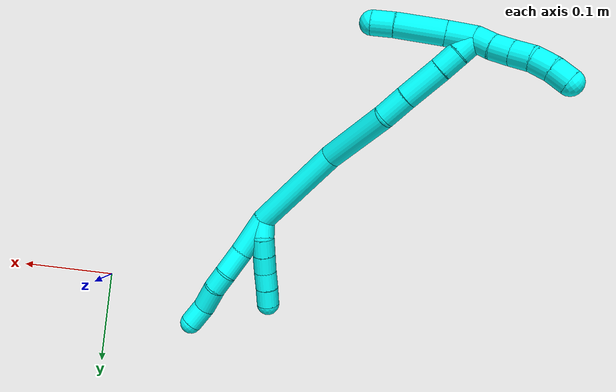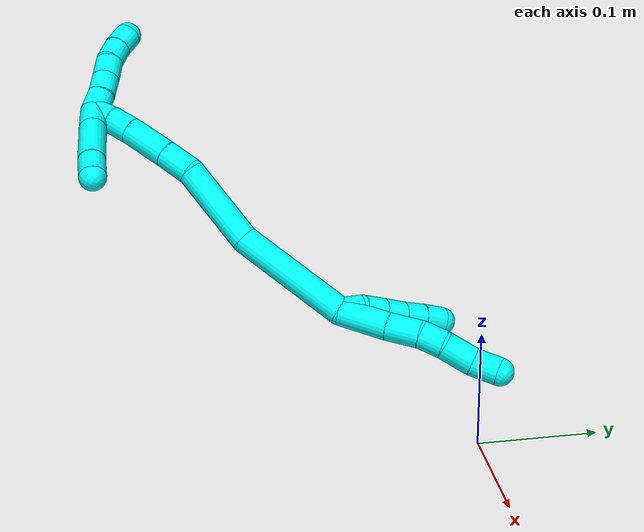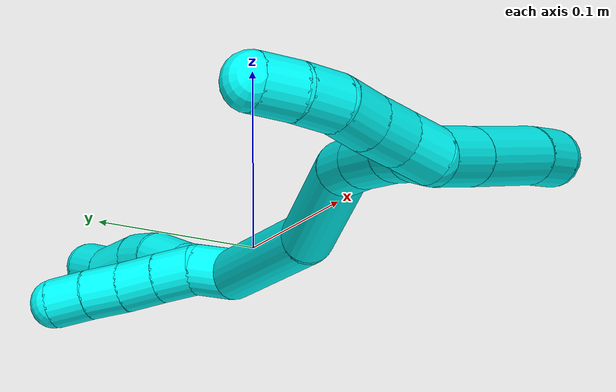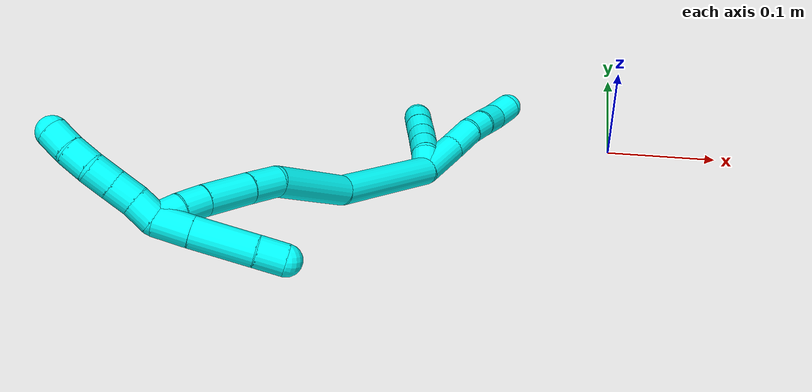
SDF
<sdf version="1.7">
 <world name="default">
  <model name="3">
   <static>0</static>
   <link name="3">
    <collision name="collision-cylinder-e_1_2_8">
     <pose>0.007252 0.006471 -0.019644 -2.82336 0.337241 -1.62983</pose>
     <geometry><cylinder><radius>0.0125</radius><length>0.043835</length></cylinder></geometry>
     <surface>
      <friction><ode><mu>1.16</mu><mu2>1.16</mu2><slip1>0</slip1><slip2>0</slip2></ode></friction>
      <contact><ode><kp>1e+06</kp><kd>1</kd><max_vel>0</max_vel><min_depth>0.001</min_depth></ode></contact>
     </surface>
    </collision>
    <visual name="visual-cylinder-e_1_2_8">
     <pose>0.007252 0.006471 -0.019644 -2.82336 0.337241 -1.62983</pose>
     <geometry><cylinder><radius>0.0125</radius><length>0.043835</length></cylinder></geometry>
     <material><ambient>0.003922 1 0.996078 1</ambient></material>
    </visual>
    <collision name="collision-cylinder-e_2_8_9">
     <pose>0.020924 0.016623 -0.052531 -2.87053 0.43697 -2.04002</pose>
     <geometry><cylinder><radius>0.0125</radius><length>0.03034</length></cylinder></geometry>
     <surface>
      <friction><ode><mu>1.16</mu><mu2>1.16</mu2><slip1>0</slip1><slip2>0</slip2></ode></friction>
      <contact><ode><kp>1e+06</kp><kd>1</kd><max_vel>0</max_vel><min_depth>0.001</min_depth></ode></contact>
     </surface>
    </collision>
    <visual name="visual-cylinder-e_2_8_9">
     <pose>0.020924 0.016623 -0.052531 -2.87053 0.43697 -2.04002</pose>
     <geometry><cylinder><radius>0.0125</radius><length>0.03034</length></cylinder></geometry>
     <material><ambient>0.003922 1 0.996078 1</ambient></material>
    </visual>
    <collision name="collision-cylinder-e_3_9_10">
     <pose>0.029755 0.023178 -0.076031 -2.86835 0.222584 -1.36508</pose>
     <geometry><cylinder><radius>0.0125</radius><length>0.021844</length></cylinder></geometry>
     <surface>
      <friction><ode><mu>1.16</mu><mu2>1.16</mu2><slip1>0</slip1><slip2>0</slip2></ode></friction>
      <contact><ode><kp>1e+06</kp><kd>1</kd><max_vel>0</max_vel><min_depth>0.001</min_depth></ode></contact>
     </surface>
    </collision>
    <visual name="visual-cylinder-e_3_9_10">
     <pose>0.029755 0.023178 -0.076031 -2.86835 0.222584 -1.36508</pose>
     <geometry><cylinder><radius>0.0125</radius><length>0.021844</length></cylinder></geometry>
     <material><ambient>0.003922 1 0.996078 1</ambient></material>
    </visual>
    <collision name="collision-cylinder-e_4_10_11">
     <pose>0.032705 0.031614 -0.0998 -2.75114 0.036859 -0.185881</pose>
     <geometry><cylinder><radius>0.0125</radius><length>0.029242</length></cylinder></geometry>
     <surface>
      <friction><ode><mu>1.16</mu><mu2>1.16</mu2><slip1>0</slip1><slip2>0</slip2></ode></friction>
      <contact><ode><kp>1e+06</kp><kd>1</kd><max_vel>0</max_vel><min_depth>0.001</min_depth></ode></contact>
     </surface>
    </collision>
    <visual name="visual-cylinder-e_4_10_11">
     <pose>0.032705 0.031614 -0.0998 -2.75114 0.036859 -0.185881</pose>
     <geometry><cylinder><radius>0.0125</radius><length>0.029242</length></cylinder></geometry>
     <material><ambient>0.003922 1 0.996078 1</ambient></material>
    </visual>
    <collision name="collision-cylinder-e_5_11_6">
     <pose>0.037289 0.039746 -0.124714 -2.91977 0.333178 -1.97162</pose>
     <geometry><cylinder><radius>0.0125</radius><length>0.02474</length></cylinder></geometry>
     <surface>
      <friction><ode><mu>1.16</mu><mu2>1.16</mu2><slip1>0</slip1><slip2>0</slip2></ode></friction>
      <contact><ode><kp>1e+06</kp><kd>1</kd><max_vel>0</max_vel><min_depth>0.001</min_depth></ode></contact>
     </surface>
    </collision>
    <visual name="visual-cylinder-e_5_11_6">
     <pose>0.037289 0.039746 -0.124714 -2.91977 0.333178 -1.97162</pose>
     <geometry><cylinder><radius>0.0125</radius><length>0.02474</length></cylinder></geometry>
     <material><ambient>0.003922 1 0.996078 1</ambient></material>
    </visual>
    <collision name="collision-cylinder-e_1_2_12">
     <pose>0.00421 0.007374 -0.005282 -2.19233 0.434537 -0.811594</pose>
     <geometry><cylinder><radius>0.0125</radius><length>0.02</length></cylinder></geometry>
     <surface>
      <friction><ode><mu>1.16</mu><mu2>1.16</mu2><slip1>0</slip1><slip2>0</slip2></ode></friction>
      <contact><ode><kp>1e+06</kp><kd>1</kd><max_vel>0</max_vel><min_depth>0.001</min_depth></ode></contact>
     </surface>
    </collision>
    <visual name="visual-cylinder-e_1_2_12">
     <pose>0.00421 0.007374 -0.005282 -2.19233 0.434537 -0.811594</pose>
     <geometry><cylinder><radius>0.0125</radius><length>0.02</length></cylinder></geometry>
     <material><ambient>0.003922 1 0.996078 1</ambient></material>
    </visual>
    <collision name="collision-cylinder-e_2_12_13">
     <pose>0.009416 0.022791 -0.016422 -2.20032 0.099786 -0.19567</pose>
     <geometry><cylinder><radius>0.0125</radius><length>0.02</length></cylinder></geometry>
     <surface>
      <friction><ode><mu>1.16</mu><mu2>1.16</mu2><slip1>0</slip1><slip2>0</slip2></ode></friction>
      <contact><ode><kp>1e+06</kp><kd>1</kd><max_vel>0</max_vel><min_depth>0.001</min_depth></ode></contact>
     </surface>
    </collision>
    <visual name="visual-cylinder-e_2_12_13">
     <pose>0.009416 0.022791 -0.016422 -2.20032 0.099786 -0.19567</pose>
     <geometry><cylinder><radius>0.0125</radius><length>0.02</length></cylinder></geometry>
     <material><ambient>0.003922 1 0.996078 1</ambient></material>
    </visual>
    <collision name="collision-cylinder-e_3_13_14">
     <pose>0.01121 0.038869 -0.02818 -2.20425 0.079876 -0.157523</pose>
     <geometry><cylinder><radius>0.0125</radius><length>0.02</length></cylinder></geometry>
     <surface>
      <friction><ode><mu>1.16</mu><mu2>1.16</mu2><slip1>0</slip1><slip2>0</slip2></ode></friction>
      <contact><ode><kp>1e+06</kp><kd>1</kd><max_vel>0</max_vel><min_depth>0.001</min_depth></ode></contact>
     </surface>
    </collision>
    <visual name="visual-cylinder-e_3_13_14">
     <pose>0.01121 0.038869 -0.02818 -2.20425 0.079876 -0.157523</pose>
     <geometry><cylinder><radius>0.0125</radius><length>0.02</length></cylinder></geometry>
     <material><ambient>0.003922 1 0.996078 1</ambient></material>
    </visual>
    <collision name="collision-cylinder-e_4_14_15">
     <pose>0.013231 0.055177 -0.039561 -2.15581 0.122556 -0.227476</pose>
     <geometry><cylinder><radius>0.0125</radius><length>0.02</length></cylinder></geometry>
     <surface>
      <friction><ode><mu>1.16</mu><mu2>1.16</mu2><slip1>0</slip1><slip2>0</slip2></ode></friction>
      <contact><ode><kp>1e+06</kp><kd>1</kd><max_vel>0</max_vel><min_depth>0.001</min_depth></ode></contact>
     </surface>
    </collision>
    <visual name="visual-cylinder-e_4_14_15">
     <pose>0.013231 0.055177 -0.039561 -2.15581 0.122556 -0.227476</pose>
     <geometry><cylinder><radius>0.0125</radius><length>0.02</length></cylinder></geometry>
     <material><ambient>0.003922 1 0.996078 1</ambient></material>
    </visual>
    <collision name="collision-cylinder-e_5_15_5">
     <pose>0.015307 0.071509 -0.050904 -2.19974 0.085526 -0.167692</pose>
     <geometry><cylinder><radius>0.0125</radius><length>0.02</length></cylinder></geometry>
     <surface>
      <friction><ode><mu>1.16</mu><mu2>1.16</mu2><slip1>0</slip1><slip2>0</slip2></ode></friction>
      <contact><ode><kp>1e+06</kp><kd>1</kd><max_vel>0</max_vel><min_depth>0.001</min_depth></ode></contact>
     </surface>
    </collision>
    <visual name="visual-cylinder-e_5_15_5">
     <pose>0.015307 0.071509 -0.050904 -2.19974 0.085526 -0.167692</pose>
     <geometry><cylinder><radius>0.0125</radius><length>0.02</length></cylinder></geometry>
     <material><ambient>0.003922 1 0.996078 1</ambient></material>
    </visual>
    <collision name="collision-cylinder-e_1_2_16">
     <pose>-0.00326 -0.006647 0.053635 0.12331 -0.060245 -0.00372</pose>
     <geometry><cylinder><radius>0.0125</radius><length>0.108286</length></cylinder></geometry>
     <surface>
      <friction><ode><mu>1.16</mu><mu2>1.16</mu2><slip1>0</slip1><slip2>0</slip2></ode></friction>
      <contact><ode><kp>1e+06</kp><kd>1</kd><max_vel>0</max_vel><min_depth>0.001</min_depth></ode></contact>
     </surface>
    </collision>
    <visual name="visual-cylinder-e_1_2_16">
     <pose>-0.00326 -0.006647 0.053635 0.12331 -0.060245 -0.00372</pose>
     <geometry><cylinder><radius>0.0125</radius><length>0.108286</length></cylinder></geometry>
     <material><ambient>0.003922 1 0.996078 1</ambient></material>
    </visual>
    <collision name="collision-cylinder-e_2_16_17">
     <pose>0.000957 -0.01565 0.145597 0.061378 0.192302 0.005922</pose>
     <geometry><cylinder><radius>0.0125</radius><length>0.078243</length></cylinder></geometry>
     <surface>
      <friction><ode><mu>1.16</mu><mu2>1.16</mu2><slip1>0</slip1><slip2>0</slip2></ode></friction>
      <contact><ode><kp>1e+06</kp><kd>1</kd><max_vel>0</max_vel><min_depth>0.001</min_depth></ode></contact>
     </surface>
    </collision>
    <visual name="visual-cylinder-e_2_16_17">
     <pose>0.000957 -0.01565 0.145597 0.061378 0.192302 0.005922</pose>
     <geometry><cylinder><radius>0.0125</radius><length>0.078243</length></cylinder></geometry>
     <material><ambient>0.003922 1 0.996078 1</ambient></material>
    </visual>
    <collision name="collision-cylinder-e_3_17_18">
     <pose>0.006754 -0.019115 0.198307 0.076951 -0.115973 -0.004469</pose>
     <geometry><cylinder><radius>0.0125</radius><length>0.029044</length></cylinder></geometry>
     <surface>
      <friction><ode><mu>1.16</mu><mu2>1.16</mu2><slip1>0</slip1><slip2>0</slip2></ode></friction>
      <contact><ode><kp>1e+06</kp><kd>1</kd><max_vel>0</max_vel><min_depth>0.001</min_depth></ode></contact>
     </surface>
    </collision>
    <visual name="visual-cylinder-e_3_17_18">
     <pose>0.006754 -0.019115 0.198307 0.076951 -0.115973 -0.004469</pose>
     <geometry><cylinder><radius>0.0125</radius><length>0.029044</length></cylinder></geometry>
     <material><ambient>0.003922 1 0.996078 1</ambient></material>
    </visual>
    <collision name="collision-cylinder-e_4_18_19">
     <pose>0.001709 -0.021163 0.233214 0.045739 -0.162274 -0.00372</pose>
     <geometry><cylinder><radius>0.0125</radius><length>0.041641</length></cylinder></geometry>
     <surface>
      <friction><ode><mu>1.16</mu><mu2>1.16</mu2><slip1>0</slip1><slip2>0</slip2></ode></friction>
      <contact><ode><kp>1e+06</kp><kd>1</kd><max_vel>0</max_vel><min_depth>0.001</min_depth></ode></contact>
     </surface>
    </collision>
    <visual name="visual-cylinder-e_4_18_19">
     <pose>0.001709 -0.021163 0.233214 0.045739 -0.162274 -0.00372</pose>
     <geometry><cylinder><radius>0.0125</radius><length>0.041641</length></cylinder></geometry>
     <material><ambient>0.003922 1 0.996078 1</ambient></material>
    </visual>
    <collision name="collision-cylinder-e_5_19_20">
     <pose>-0.004061 -0.022819 0.264339 0.067543 -0.222769 -0.007557</pose>
     <geometry><cylinder><radius>0.0125</radius><length>0.021784</length></cylinder></geometry>
     <surface>
      <friction><ode><mu>1.16</mu><mu2>1.16</mu2><slip1>0</slip1><slip2>0</slip2></ode></friction>
      <contact><ode><kp>1e+06</kp><kd>1</kd><max_vel>0</max_vel><min_depth>0.001</min_depth></ode></contact>
     </surface>
    </collision>
    <visual name="visual-cylinder-e_5_19_20">
     <pose>-0.004061 -0.022819 0.264339 0.067543 -0.222769 -0.007557</pose>
     <geometry><cylinder><radius>0.0125</radius><length>0.021784</length></cylinder></geometry>
     <material><ambient>0.003922 1 0.996078 1</ambient></material>
    </visual>
    <collision name="collision-cylinder-e_6_20_1">
     <pose>-0.009833 -0.024083 0.284869 0.055016 -0.326255 -0.009057</pose>
     <geometry><cylinder><radius>0.0125</radius><length>0.021001</length></cylinder></geometry>
     <surface>
      <friction><ode><mu>1.16</mu><mu2>1.16</mu2><slip1>0</slip1><slip2>0</slip2></ode></friction>
      <contact><ode><kp>1e+06</kp><kd>1</kd><max_vel>0</max_vel><min_depth>0.001</min_depth></ode></contact>
     </surface>
    </collision>
    <visual name="visual-cylinder-e_6_20_1">
     <pose>-0.009833 -0.024083 0.284869 0.055016 -0.326255 -0.009057</pose>
     <geometry><cylinder><radius>0.0125</radius><length>0.021001</length></cylinder></geometry>
     <material><ambient>0.003922 1 0.996078 1</ambient></material>
    </visual>
    <collision name="collision-cylinder-e_1_1_21">
     <pose>-0.013669 -0.034966 0.285429 2.30735 -0.033733 -0.076095</pose>
     <geometry><cylinder><radius>0.0125</radius><length>0.02792</length></cylinder></geometry>
     <surface>
      <friction><ode><mu>1.16</mu><mu2>1.16</mu2><slip1>0</slip1><slip2>0</slip2></ode></friction>
      <contact><ode><kp>1e+06</kp><kd>1</kd><max_vel>0</max_vel><min_depth>0.001</min_depth></ode></contact>
     </surface>
    </collision>
    <visual name="visual-cylinder-e_1_1_21">
     <pose>-0.013669 -0.034966 0.285429 2.30735 -0.033733 -0.076095</pose>
     <geometry><cylinder><radius>0.0125</radius><length>0.02792</length></cylinder></geometry>
     <material><ambient>0.003922 1 0.996078 1</ambient></material>
    </visual>
    <collision name="collision-cylinder-e_2_21_22">
     <pose>-0.014527 -0.063257 0.259117 2.32708 -0.015677 -0.036338</pose>
     <geometry><cylinder><radius>0.0125</radius><length>0.049376</length></cylinder></geometry>
     <surface>
      <friction><ode><mu>1.16</mu><mu2>1.16</mu2><slip1>0</slip1><slip2>0</slip2></ode></friction>
      <contact><ode><kp>1e+06</kp><kd>1</kd><max_vel>0</max_vel><min_depth>0.001</min_depth></ode></contact>
     </surface>
    </collision>
    <visual name="visual-cylinder-e_2_21_22">
     <pose>-0.014527 -0.063257 0.259117 2.32708 -0.015677 -0.036338</pose>
     <geometry><cylinder><radius>0.0125</radius><length>0.049376</length></cylinder></geometry>
     <material><ambient>0.003922 1 0.996078 1</ambient></material>
    </visual>
    <collision name="collision-cylinder-e_3_22_4">
     <pose>-0.015521 -0.088861 0.233811 2.40098 -0.053478 -0.13757</pose>
     <geometry><cylinder><radius>0.0125</radius><length>0.022704</length></cylinder></geometry>
     <surface>
      <friction><ode><mu>1.16</mu><mu2>1.16</mu2><slip1>0</slip1><slip2>0</slip2></ode></friction>
      <contact><ode><kp>1e+06</kp><kd>1</kd><max_vel>0</max_vel><min_depth>0.001</min_depth></ode></contact>
     </surface>
    </collision>
    <visual name="visual-cylinder-e_3_22_4">
     <pose>-0.015521 -0.088861 0.233811 2.40098 -0.053478 -0.13757</pose>
     <geometry><cylinder><radius>0.0125</radius><length>0.022704</length></cylinder></geometry>
     <material><ambient>0.003922 1 0.996078 1</ambient></material>
    </visual>
    <collision name="collision-cylinder-e_1_1_23">
     <pose>-0.008705 -0.017253 0.29984 -0.971445 0.465959 -0.249234</pose>
     <geometry><cylinder><radius>0.0125</radius><length>0.02</length></cylinder></geometry>
     <surface>
      <friction><ode><mu>1.16</mu><mu2>1.16</mu2><slip1>0</slip1><slip2>0</slip2></ode></friction>
      <contact><ode><kp>1e+06</kp><kd>1</kd><max_vel>0</max_vel><min_depth>0.001</min_depth></ode></contact>
     </surface>
    </collision>
    <visual name="visual-cylinder-e_1_1_23">
     <pose>-0.008705 -0.017253 0.29984 -0.971445 0.465959 -0.249234</pose>
     <geometry><cylinder><radius>0.0125</radius><length>0.02</length></cylinder></geometry>
     <material><ambient>0.003922 1 0.996078 1</ambient></material>
    </visual>
    <collision name="collision-cylinder-e_2_23_24">
     <pose>-0.000499 -0.00285 0.310949 -0.858394 0.38045 -0.17579</pose>
     <geometry><cylinder><radius>0.0125</radius><length>0.02</length></cylinder></geometry>
     <surface>
      <friction><ode><mu>1.16</mu><mu2>1.16</mu2><slip1>0</slip1><slip2>0</slip2></ode></friction>
      <contact><ode><kp>1e+06</kp><kd>1</kd><max_vel>0</max_vel><min_depth>0.001</min_depth></ode></contact>
     </surface>
    </collision>
    <visual name="visual-cylinder-e_2_23_24">
     <pose>-0.000499 -0.00285 0.310949 -0.858394 0.38045 -0.17579</pose>
     <geometry><cylinder><radius>0.0125</radius><length>0.02</length></cylinder></geometry>
     <material><ambient>0.003922 1 0.996078 1</ambient></material>
    </visual>
    <collision name="collision-cylinder-e_3_24_25">
     <pose>0.007149 0.010887 0.323302 -0.818202 0.404464 -0.177325</pose>
     <geometry><cylinder><radius>0.0125</radius><length>0.02</length></cylinder></geometry>
     <surface>
      <friction><ode><mu>1.16</mu><mu2>1.16</mu2><slip1>0</slip1><slip2>0</slip2></ode></friction>
      <contact><ode><kp>1e+06</kp><kd>1</kd><max_vel>0</max_vel><min_depth>0.001</min_depth></ode></contact>
     </surface>
    </collision>
    <visual name="visual-cylinder-e_3_24_25">
     <pose>0.007149 0.010887 0.323302 -0.818202 0.404464 -0.177325</pose>
     <geometry><cylinder><radius>0.0125</radius><length>0.02</length></cylinder></geometry>
     <material><ambient>0.003922 1 0.996078 1</ambient></material>
    </visual>
    <collision name="collision-cylinder-e_4_25_26">
     <pose>0.01445 0.025822 0.334173 -1.06208 0.343224 -0.202883</pose>
     <geometry><cylinder><radius>0.0125</radius><length>0.02</length></cylinder></geometry>
     <surface>
      <friction><ode><mu>1.16</mu><mu2>1.16</mu2><slip1>0</slip1><slip2>0</slip2></ode></friction>
      <contact><ode><kp>1e+06</kp><kd>1</kd><max_vel>0</max_vel><min_depth>0.001</min_depth></ode></contact>
     </surface>
    </collision>
    <visual name="visual-cylinder-e_4_25_26">
     <pose>0.01445 0.025822 0.334173 -1.06208 0.343224 -0.202883</pose>
     <geometry><cylinder><radius>0.0125</radius><length>0.02</length></cylinder></geometry>
     <material><ambient>0.003922 1 0.996078 1</ambient></material>
    </visual>
    <collision name="collision-cylinder-e_5_26_3">
     <pose>0.021282 0.042879 0.341915 -1.22763 0.35403 -0.25077</pose>
     <geometry><cylinder><radius>0.0125</radius><length>0.02</length></cylinder></geometry>
     <surface>
      <friction><ode><mu>1.16</mu><mu2>1.16</mu2><slip1>0</slip1><slip2>0</slip2></ode></friction>
      <contact><ode><kp>1e+06</kp><kd>1</kd><max_vel>0</max_vel><min_depth>0.001</min_depth></ode></contact>
     </surface>
    </collision>
    <visual name="visual-cylinder-e_5_26_3">
     <pose>0.021282 0.042879 0.341915 -1.22763 0.35403 -0.25077</pose>
     <geometry><cylinder><radius>0.0125</radius><length>0.02</length></cylinder></geometry>
     <material><ambient>0.003922 1 0.996078 1</ambient></material>
    </visual>
    <collision name="collision-sphere-3">
     <pose>0.024749 0.051712 0.345071 0 -0 0</pose>
     <geometry><sphere><radius>0.0125</radius></sphere></geometry>
     <surface>
      <friction><ode><mu>1.16</mu><mu2>1.16</mu2><slip1>0</slip1><slip2>0</slip2></ode></friction>
      <contact><ode><kp>1e+06</kp><kd>1</kd><max_vel>0</max_vel><min_depth>0.001</min_depth></ode></contact>
     </surface>
    </collision>
    <visual name="visual-sphere-3">
     <pose>0.024749 0.051712 0.345071 0 -0 0</pose>
     <geometry><sphere><radius>0.0125</radius></sphere></geometry>
     <material><ambient>0.003922 1 0.996078 1</ambient></material>
    </visual>
    <collision name="collision-sphere-26">
     <pose>0.017815 0.034046 0.338759 0 -0 0</pose>
     <geometry><sphere><radius>0.0125</radius></sphere></geometry>
     <surface>
      <friction><ode><mu>1.16</mu><mu2>1.16</mu2><slip1>0</slip1><slip2>0</slip2></ode></friction>
      <contact><ode><kp>1e+06</kp><kd>1</kd><max_vel>0</max_vel><min_depth>0.001</min_depth></ode></contact>
     </surface>
    </collision>
    <visual name="visual-sphere-26">
     <pose>0.017815 0.034046 0.338759 0 -0 0</pose>
     <geometry><sphere><radius>0.0125</radius></sphere></geometry>
     <material><ambient>0.003922 1 0.996078 1</ambient></material>
    </visual>
    <collision name="collision-sphere-25">
     <pose>0.011085 0.017597 0.329586 0 -0 0</pose>
     <geometry><sphere><radius>0.0125</radius></sphere></geometry>
     <surface>
      <friction><ode><mu>1.16</mu><mu2>1.16</mu2><slip1>0</slip1><slip2>0</slip2></ode></friction>
      <contact><ode><kp>1e+06</kp><kd>1</kd><max_vel>0</max_vel><min_depth>0.001</min_depth></ode></contact>
     </surface>
    </collision>
    <visual name="visual-sphere-25">
     <pose>0.011085 0.017597 0.329586 0 -0 0</pose>
     <geometry><sphere><radius>0.0125</radius></sphere></geometry>
     <material><ambient>0.003922 1 0.996078 1</ambient></material>
    </visual>
    <collision name="collision-sphere-24">
     <pose>0.003214 0.004177 0.317018 0 -0 0</pose>
     <geometry><sphere><radius>0.0125</radius></sphere></geometry>
     <surface>
      <friction><ode><mu>1.16</mu><mu2>1.16</mu2><slip1>0</slip1><slip2>0</slip2></ode></friction>
      <contact><ode><kp>1e+06</kp><kd>1</kd><max_vel>0</max_vel><min_depth>0.001</min_depth></ode></contact>
     </surface>
    </collision>
    <visual name="visual-sphere-24">
     <pose>0.003214 0.004177 0.317018 0 -0 0</pose>
     <geometry><sphere><radius>0.0125</radius></sphere></geometry>
     <material><ambient>0.003922 1 0.996078 1</ambient></material>
    </visual>
    <collision name="collision-sphere-23">
     <pose>-0.004213 -0.009877 0.30488 0 -0 0</pose>
     <geometry><sphere><radius>0.0125</radius></sphere></geometry>
     <surface>
      <friction><ode><mu>1.16</mu><mu2>1.16</mu2><slip1>0</slip1><slip2>0</slip2></ode></friction>
      <contact><ode><kp>1e+06</kp><kd>1</kd><max_vel>0</max_vel><min_depth>0.001</min_depth></ode></contact>
     </surface>
    </collision>
    <visual name="visual-sphere-23">
     <pose>-0.004213 -0.009877 0.30488 0 -0 0</pose>
     <geometry><sphere><radius>0.0125</radius></sphere></geometry>
     <material><ambient>0.003922 1 0.996078 1</ambient></material>
    </visual>
    <collision name="collision-sphere-4">
     <pose>-0.016127 -0.09651 0.225445 0 -0 0</pose>
     <geometry><sphere><radius>0.0125</radius></sphere></geometry>
     <surface>
      <friction><ode><mu>1.16</mu><mu2>1.16</mu2><slip1>0</slip1><slip2>0</slip2></ode></friction>
      <contact><ode><kp>1e+06</kp><kd>1</kd><max_vel>0</max_vel><min_depth>0.001</min_depth></ode></contact>
     </surface>
    </collision>
    <visual name="visual-sphere-4">
     <pose>-0.016127 -0.09651 0.225445 0 -0 0</pose>
     <geometry><sphere><radius>0.0125</radius></sphere></geometry>
     <material><ambient>0.003922 1 0.996078 1</ambient></material>
    </visual>
    <collision name="collision-sphere-22">
     <pose>-0.014914 -0.081213 0.242178 0 -0 0</pose>
     <geometry><sphere><radius>0.0125</radius></sphere></geometry>
     <surface>
      <friction><ode><mu>1.16</mu><mu2>1.16</mu2><slip1>0</slip1><slip2>0</slip2></ode></friction>
      <contact><ode><kp>1e+06</kp><kd>1</kd><max_vel>0</max_vel><min_depth>0.001</min_depth></ode></contact>
     </surface>
    </collision>
    <visual name="visual-sphere-22">
     <pose>-0.014914 -0.081213 0.242178 0 -0 0</pose>
     <geometry><sphere><radius>0.0125</radius></sphere></geometry>
     <material><ambient>0.003922 1 0.996078 1</ambient></material>
    </visual>
    <collision name="collision-sphere-21">
     <pose>-0.01414 -0.045301 0.276057 0 -0 0</pose>
     <geometry><sphere><radius>0.0125</radius></sphere></geometry>
     <surface>
      <friction><ode><mu>1.16</mu><mu2>1.16</mu2><slip1>0</slip1><slip2>0</slip2></ode></friction>
      <contact><ode><kp>1e+06</kp><kd>1</kd><max_vel>0</max_vel><min_depth>0.001</min_depth></ode></contact>
     </surface>
    </collision>
    <visual name="visual-sphere-21">
     <pose>-0.01414 -0.045301 0.276057 0 -0 0</pose>
     <geometry><sphere><radius>0.0125</radius></sphere></geometry>
     <material><ambient>0.003922 1 0.996078 1</ambient></material>
    </visual>
    <collision name="collision-sphere-1">
     <pose>-0.013198 -0.02463 0.294801 0 -0 0</pose>
     <geometry><sphere><radius>0.0125</radius></sphere></geometry>
     <surface>
      <friction><ode><mu>1.16</mu><mu2>1.16</mu2><slip1>0</slip1><slip2>0</slip2></ode></friction>
      <contact><ode><kp>1e+06</kp><kd>1</kd><max_vel>0</max_vel><min_depth>0.001</min_depth></ode></contact>
     </surface>
    </collision>
    <visual name="visual-sphere-1">
     <pose>-0.013198 -0.02463 0.294801 0 -0 0</pose>
     <geometry><sphere><radius>0.0125</radius></sphere></geometry>
     <material><ambient>0.003922 1 0.996078 1</ambient></material>
    </visual>
    <collision name="collision-sphere-6">
     <pose>0.041335 0.042318 -0.136118 0 -0 0</pose>
     <geometry><sphere><radius>0.0125</radius></sphere></geometry>
     <surface>
      <friction><ode><mu>1.16</mu><mu2>1.16</mu2><slip1>0</slip1><slip2>0</slip2></ode></friction>
      <contact><ode><kp>1e+06</kp><kd>1</kd><max_vel>0</max_vel><min_depth>0.001</min_depth></ode></contact>
     </surface>
    </collision>
    <visual name="visual-sphere-6">
     <pose>0.041335 0.042318 -0.136118 0 -0 0</pose>
     <geometry><sphere><radius>0.0125</radius></sphere></geometry>
     <material><ambient>0.003922 1 0.996078 1</ambient></material>
    </visual>
    <collision name="collision-sphere-11">
     <pose>0.033244 0.037175 -0.113311 0 -0 0</pose>
     <geometry><sphere><radius>0.0125</radius></sphere></geometry>
     <surface>
      <friction><ode><mu>1.16</mu><mu2>1.16</mu2><slip1>0</slip1><slip2>0</slip2></ode></friction>
      <contact><ode><kp>1e+06</kp><kd>1</kd><max_vel>0</max_vel><min_depth>0.001</min_depth></ode></contact>
     </surface>
    </collision>
    <visual name="visual-sphere-11">
     <pose>0.033244 0.037175 -0.113311 0 -0 0</pose>
     <geometry><sphere><radius>0.0125</radius></sphere></geometry>
     <material><ambient>0.003922 1 0.996078 1</ambient></material>
    </visual>
    <collision name="collision-sphere-10">
     <pose>0.032166 0.026052 -0.086288 0 -0 0</pose>
     <geometry><sphere><radius>0.0125</radius></sphere></geometry>
     <surface>
      <friction><ode><mu>1.16</mu><mu2>1.16</mu2><slip1>0</slip1><slip2>0</slip2></ode></friction>
      <contact><ode><kp>1e+06</kp><kd>1</kd><max_vel>0</max_vel><min_depth>0.001</min_depth></ode></contact>
     </surface>
    </collision>
    <visual name="visual-sphere-10">
     <pose>0.032166 0.026052 -0.086288 0 -0 0</pose>
     <geometry><sphere><radius>0.0125</radius></sphere></geometry>
     <material><ambient>0.003922 1 0.996078 1</ambient></material>
    </visual>
    <collision name="collision-sphere-9">
     <pose>0.027344 0.020303 -0.065774 0 -0 0</pose>
     <geometry><sphere><radius>0.0125</radius></sphere></geometry>
     <surface>
      <friction><ode><mu>1.16</mu><mu2>1.16</mu2><slip1>0</slip1><slip2>0</slip2></ode></friction>
      <contact><ode><kp>1e+06</kp><kd>1</kd><max_vel>0</max_vel><min_depth>0.001</min_depth></ode></contact>
     </surface>
    </collision>
    <visual name="visual-sphere-9">
     <pose>0.027344 0.020303 -0.065774 0 -0 0</pose>
     <geometry><sphere><radius>0.0125</radius></sphere></geometry>
     <material><ambient>0.003922 1 0.996078 1</ambient></material>
    </visual>
    <collision name="collision-sphere-2">
     <geometry><sphere><radius>0.0125</radius></sphere></geometry>
     <surface>
      <friction><ode><mu>1.16</mu><mu2>1.16</mu2><slip1>0</slip1><slip2>0</slip2></ode></friction>
      <contact><ode><kp>1e+06</kp><kd>1</kd><max_vel>0</max_vel><min_depth>0.001</min_depth></ode></contact>
     </surface>
    </collision>
    <visual name="visual-sphere-2">
     <geometry><sphere><radius>0.0125</radius></sphere></geometry>
     <material><ambient>0.003922 1 0.996078 1</ambient></material>
    </visual>
    <collision name="collision-sphere-19">
     <pose>-0.001655 -0.022102 0.25374 0 -0 0</pose>
     <geometry><sphere><radius>0.0125</radius></sphere></geometry>
     <surface>
      <friction><ode><mu>1.16</mu><mu2>1.16</mu2><slip1>0</slip1><slip2>0</slip2></ode></friction>
      <contact><ode><kp>1e+06</kp><kd>1</kd><max_vel>0</max_vel><min_depth>0.001</min_depth></ode></contact>
     </surface>
    </collision>
    <visual name="visual-sphere-19">
     <pose>-0.001655 -0.022102 0.25374 0 -0 0</pose>
     <geometry><sphere><radius>0.0125</radius></sphere></geometry>
     <material><ambient>0.003922 1 0.996078 1</ambient></material>
    </visual>
    <collision name="collision-sphere-8">
     <pose>0.014504 0.012943 -0.039289 0 -0 0</pose>
     <geometry><sphere><radius>0.0125</radius></sphere></geometry>
     <surface>
      <friction><ode><mu>1.16</mu><mu2>1.16</mu2><slip1>0</slip1><slip2>0</slip2></ode></friction>
      <contact><ode><kp>1e+06</kp><kd>1</kd><max_vel>0</max_vel><min_depth>0.001</min_depth></ode></contact>
     </surface>
    </collision>
    <visual name="visual-sphere-8">
     <pose>0.014504 0.012943 -0.039289 0 -0 0</pose>
     <geometry><sphere><radius>0.0125</radius></sphere></geometry>
     <material><ambient>0.003922 1 0.996078 1</ambient></material>
    </visual>
    <collision name="collision-sphere-12">
     <pose>0.00842 0.014749 -0.010563 0 -0 0</pose>
     <geometry><sphere><radius>0.0125</radius></sphere></geometry>
     <surface>
      <friction><ode><mu>1.16</mu><mu2>1.16</mu2><slip1>0</slip1><slip2>0</slip2></ode></friction>
      <contact><ode><kp>1e+06</kp><kd>1</kd><max_vel>0</max_vel><min_depth>0.001</min_depth></ode></contact>
     </surface>
    </collision>
    <visual name="visual-sphere-12">
     <pose>0.00842 0.014749 -0.010563 0 -0 0</pose>
     <geometry><sphere><radius>0.0125</radius></sphere></geometry>
     <material><ambient>0.003922 1 0.996078 1</ambient></material>
    </visual>
    <collision name="collision-sphere-13">
     <pose>0.010412 0.030834 -0.02228 0 -0 0</pose>
     <geometry><sphere><radius>0.0125</radius></sphere></geometry>
     <surface>
      <friction><ode><mu>1.16</mu><mu2>1.16</mu2><slip1>0</slip1><slip2>0</slip2></ode></friction>
      <contact><ode><kp>1e+06</kp><kd>1</kd><max_vel>0</max_vel><min_depth>0.001</min_depth></ode></contact>
     </surface>
    </collision>
    <visual name="visual-sphere-13">
     <pose>0.010412 0.030834 -0.02228 0 -0 0</pose>
     <geometry><sphere><radius>0.0125</radius></sphere></geometry>
     <material><ambient>0.003922 1 0.996078 1</ambient></material>
    </visual>
    <collision name="collision-sphere-14">
     <pose>0.012008 0.046903 -0.034081 0 -0 0</pose>
     <geometry><sphere><radius>0.0125</radius></sphere></geometry>
     <surface>
      <friction><ode><mu>1.16</mu><mu2>1.16</mu2><slip1>0</slip1><slip2>0</slip2></ode></friction>
      <contact><ode><kp>1e+06</kp><kd>1</kd><max_vel>0</max_vel><min_depth>0.001</min_depth></ode></contact>
     </surface>
    </collision>
    <visual name="visual-sphere-14">
     <pose>0.012008 0.046903 -0.034081 0 -0 0</pose>
     <geometry><sphere><radius>0.0125</radius></sphere></geometry>
     <material><ambient>0.003922 1 0.996078 1</ambient></material>
    </visual>
    <collision name="collision-sphere-15">
     <pose>0.014453 0.063452 -0.045042 0 -0 0</pose>
     <geometry><sphere><radius>0.0125</radius></sphere></geometry>
     <surface>
      <friction><ode><mu>1.16</mu><mu2>1.16</mu2><slip1>0</slip1><slip2>0</slip2></ode></friction>
      <contact><ode><kp>1e+06</kp><kd>1</kd><max_vel>0</max_vel><min_depth>0.001</min_depth></ode></contact>
     </surface>
    </collision>
    <visual name="visual-sphere-15">
     <pose>0.014453 0.063452 -0.045042 0 -0 0</pose>
     <geometry><sphere><radius>0.0125</radius></sphere></geometry>
     <material><ambient>0.003922 1 0.996078 1</ambient></material>
    </visual>
    <collision name="collision-sphere-5">
     <pose>0.016161 0.079566 -0.056765 0 -0 0</pose>
     <geometry><sphere><radius>0.0125</radius></sphere></geometry>
     <surface>
      <friction><ode><mu>1.16</mu><mu2>1.16</mu2><slip1>0</slip1><slip2>0</slip2></ode></friction>
      <contact><ode><kp>1e+06</kp><kd>1</kd><max_vel>0</max_vel><min_depth>0.001</min_depth></ode></contact>
     </surface>
    </collision>
    <visual name="visual-sphere-5">
     <pose>0.016161 0.079566 -0.056765 0 -0 0</pose>
     <geometry><sphere><radius>0.0125</radius></sphere></geometry>
     <material><ambient>0.003922 1 0.996078 1</ambient></material>
    </visual>
    <collision name="collision-sphere-16">
     <pose>-0.00652 -0.013295 0.107269 0 -0 0</pose>
     <geometry><sphere><radius>0.0125</radius></sphere></geometry>
     <surface>
      <friction><ode><mu>1.16</mu><mu2>1.16</mu2><slip1>0</slip1><slip2>0</slip2></ode></friction>
      <contact><ode><kp>1e+06</kp><kd>1</kd><max_vel>0</max_vel><min_depth>0.001</min_depth></ode></contact>
     </surface>
    </collision>
    <visual name="visual-sphere-16">
     <pose>-0.00652 -0.013295 0.107269 0 -0 0</pose>
     <geometry><sphere><radius>0.0125</radius></sphere></geometry>
     <material><ambient>0.003922 1 0.996078 1</ambient></material>
    </visual>
    <collision name="collision-sphere-17">
     <pose>0.008434 -0.018006 0.183925 0 -0 0</pose>
     <geometry><sphere><radius>0.0125</radius></sphere></geometry>
     <surface>
      <friction><ode><mu>1.16</mu><mu2>1.16</mu2><slip1>0</slip1><slip2>0</slip2></ode></friction>
      <contact><ode><kp>1e+06</kp><kd>1</kd><max_vel>0</max_vel><min_depth>0.001</min_depth></ode></contact>
     </surface>
    </collision>
    <visual name="visual-sphere-17">
     <pose>0.008434 -0.018006 0.183925 0 -0 0</pose>
     <geometry><sphere><radius>0.0125</radius></sphere></geometry>
     <material><ambient>0.003922 1 0.996078 1</ambient></material>
    </visual>
    <collision name="collision-sphere-18">
     <pose>0.005073 -0.020223 0.212689 0 -0 0</pose>
     <geometry><sphere><radius>0.0125</radius></sphere></geometry>
     <surface>
      <friction><ode><mu>1.16</mu><mu2>1.16</mu2><slip1>0</slip1><slip2>0</slip2></ode></friction>
      <contact><ode><kp>1e+06</kp><kd>1</kd><max_vel>0</max_vel><min_depth>0.001</min_depth></ode></contact>
     </surface>
    </collision>
    <visual name="visual-sphere-18">
     <pose>0.005073 -0.020223 0.212689 0 -0 0</pose>
     <geometry><sphere><radius>0.0125</radius></sphere></geometry>
     <material><ambient>0.003922 1 0.996078 1</ambient></material>
    </visual>
    <collision name="collision-sphere-20">
     <pose>-0.006467 -0.023536 0.274938 0 -0 0</pose>
     <geometry><sphere><radius>0.0125</radius></sphere></geometry>
     <surface>
      <friction><ode><mu>1.16</mu><mu2>1.16</mu2><slip1>0</slip1><slip2>0</slip2></ode></friction>
      <contact><ode><kp>1e+06</kp><kd>1</kd><max_vel>0</max_vel><min_depth>0.001</min_depth></ode></contact>
     </surface>
    </collision>
    <visual name="visual-sphere-20">
     <pose>-0.006467 -0.023536 0.274938 0 -0 0</pose>
     <geometry><sphere><radius>0.0125</radius></sphere></geometry>
     <material><ambient>0.003922 1 0.996078 1</ambient></material>
    </visual>
    <inertial>
     <pose>0.004621 -0.002926 0.119681 0 -0 0</pose>
     <mass>0.75</mass>
     <inertia><ixx>0.000183</ixx><ixy>0</ixy><ixz>0</ixz><iyy>0.000145</iyy><iyz>0</iyz><izz>1e-05</izz></inertia>
    </inertial>
   </link>
   <pose>-0.166617 -0.083129 0.04578 -0.326891 -1.04548 1.10208</pose>
  </model>
 </world>
</sdf>
